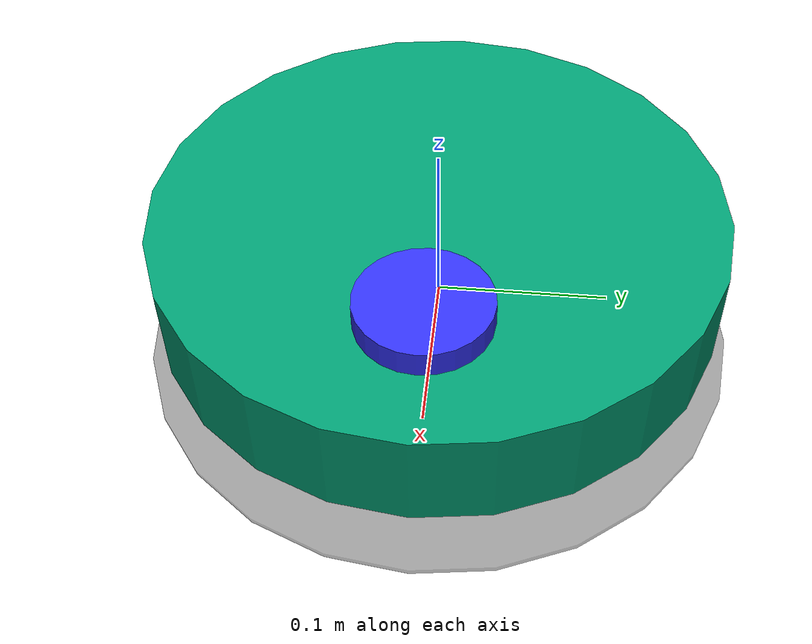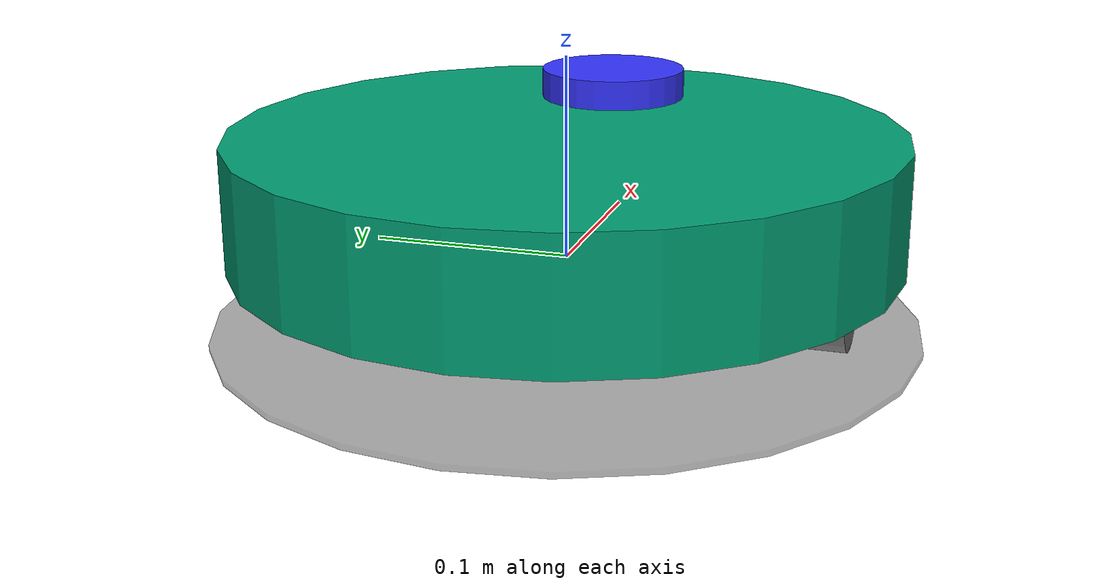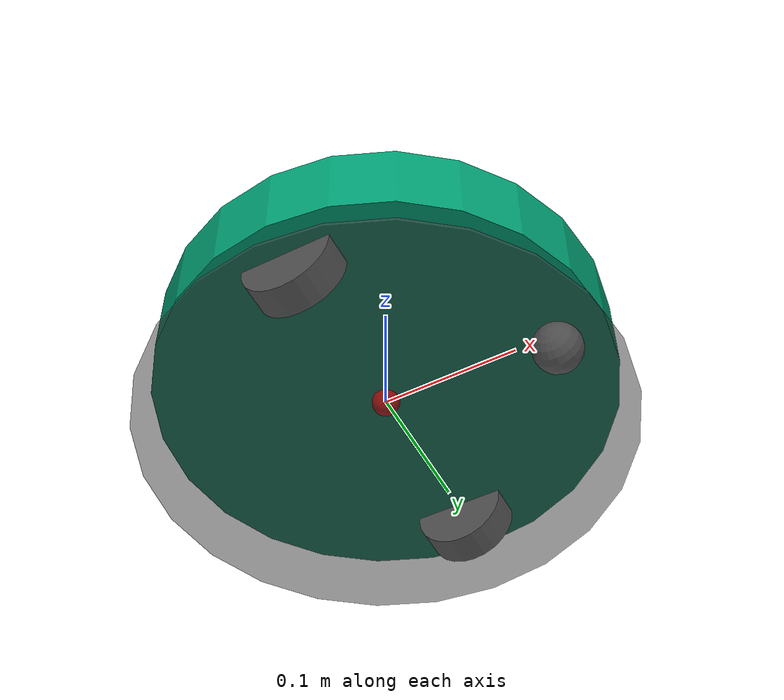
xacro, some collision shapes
<?xml version="1.0"?>
<robot xmlns:xacro="http://www.ros.org/wiki/xacro"  name="robot">

    <!-- See common Gazebo plugins in the world file -->

    <xacro:include filename="../../../description/common_properties.xacro" />

    <!-- =========== an equivalent of "robot_core.xacro" here: ============== -->

    <xacro:include filename="../../../description/inertial_macros.xacro" />

    <!-- wheel_separation - distance between left and right wheels, defined in ~/create_robot_ws/src/libcreate/src/types.cpp -->

    <xacro:include filename="create_base.urdf.xacro" />

    <xacro:create_base wheel_separation="0.258" base_diameter="0.3302" wheel_radius="0.033" wheel_width="0.024" mass_kg="3.5">
        <mesh filename="package://articubot_one/assets/meshes/create_1.dae" />
    </xacro:create_base>

    <xacro:property name="imu_offset_x" value="-0.04"/>
    <xacro:property name="imu_offset_z" value="0"/>
    <xacro:property name="imu_visual_size" value="0.01"/>
    <xacro:include filename="../../../description/imu.xacro" />

    <xacro:property name="laser_offset_x" value="0.085"/>
    <xacro:property name="laser_offset_z" value="0.033"/>

    <xacro:include filename="ros2_control.xacro" />

    <xacro:property name="open_circuit_voltage" value="14.0"/>
    <xacro:property name="battery_capacity" value="2.5"/>
    <xacro:include filename="../../../description/battery.xacro" />

    <xacro:include filename="create_sensors.urdf.xacro" />

</robot>

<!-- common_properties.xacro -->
<robot name="xacro_properties"
  xmlns:xacro="http://ros.org/wiki/xacro">

    <material name="white">
        <color rgba="1 1 1 1" />
    </material>

    <material name="black">
        <color rgba="0 0 0 1"/>
    </material>

    <material name="red">
        <color rgba="1 0 0 1"/>
    </material>

    <material name="green">
        <color rgba="0 1 0 1"/>
    </material>

    <material name="blue">
        <color rgba="0 0 1 1"/>
    </material>

    <material name="grey">
        <color rgba="0.5 0.5 0.5 1"/>
    </material>

    <material name="dark_grey">
        <color rgba="0.15 0.15 0.15 0.9"/>
    </material>

    <material name="shadow_grey">
        <color rgba="0.3 0.3 0.3 0.5"/>
    </material>

    <material name="sensor_blue">
        <color rgba="0.2 0.2 1 1"/>
    </material>

    <material name="sensor_lens_blue">
        <color rgba="0.26 0.34 0.55 1"/>
    </material>

    <material name="sensor_yellow">
        <color rgba="0.8 0.8 0.2 1"/>
    </material>

    <material name="body_color">
        <color rgba="0.6 0.5 0.2 0.85"/>
    </material>

    <material name="port_red">
        <color rgba="1 0.2 0.2 1"/>
    </material>

    <material name="starboard_green">
        <color rgba="0.2 1 0.2 1"/>
    </material>

    <xacro:arg name="sim_mode" default="false"/>

</robot>

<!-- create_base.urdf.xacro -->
<robot xmlns:xacro="http://ros.org/wiki/xacro">

  <xacro:macro name="create_wheel" params="prefix y_offset wheel_radius wheel_width">
    <link name="${prefix}_wheel_link">
      <visual>
        <origin xyz="0 0 0" rpy="0 ${pi/2} ${pi/2}"/>
        <geometry>
          <cylinder radius="${wheel_radius}" length="${wheel_width}"/>
        </geometry>
        <material name="grey"/>
      </visual>
      <collision>
        <origin xyz="0 0 0" rpy="0 ${pi/2} ${pi/2}"/>
        <geometry>
          <cylinder radius="${wheel_radius}" length="${wheel_width}"/>
        </geometry>
      </collision>
      <xacro:inertial_cylinder mass="0.01" length="${wheel_width}" radius="${wheel_radius}">
        <origin xyz="0 0 0" rpy="0 0 0"/>
      </xacro:inertial_cylinder>
    </link>

    <!-- joint name="${prefix}_wheel_joint" type="fixed" -->
    <joint name="wheel_${prefix}_joint" type="continuous">
      <origin xyz="0 ${y_offset} ${-wheel_radius}" rpy="0 0 0"/>
      <parent link="chassis_link"/>
      <child link="${prefix}_wheel_link"/>
      <axis xyz="0 1 0"/>
    </joint>

  </xacro:macro>

  <xacro:macro name="create_base"
               params="wheel_separation base_diameter wheel_radius wheel_width mass_kg *mesh">

    <!-- The coordinate frame called base_link is rigidly attached to the robot root body. -->
    <link name="base_link">
      <visual name="baselink_visual">
          <origin xyz="0 0 0"/>
          <geometry>
              <sphere radius="0.01"/>
          </geometry>
          <material name="red"/>
      </visual>
    </link>

    <!-- Define the center of the main robot chassis projected on the ground -->
    <link name="base_footprint">
      <visual name="footprint_visual">
          <origin xyz="0 0 0"/>
          <geometry>
              <cylinder radius="${base_diameter/2 + 0.01}" length="0.003"/>
          </geometry>
          <material name="shadow_grey"/>
      </visual>
    </link>

    <!-- The base footprint of the robot is located underneath the chassis -->
    <joint name="base_footprint_joint" type="fixed">
      <parent link="base_link"/>
      <child link="base_footprint" />
      <origin xyz="0 0 -${wheel_radius}" rpy="0 0 0"/>
    </joint>

    <joint name="chassis_joint" type="fixed">
      <parent link="base_link"/>
      <child link="chassis_link"/>
      <origin xyz="0 0 ${wheel_radius}"/>
    </joint>

    <!-- CHASSIS LINK -->
    <link name="chassis_link">

      <visual name="chassis_visual">
        <origin xyz=" 0 0 -0.015" rpy="0 0 0"/>
        <geometry>
          <xacro:insert_block name="mesh"/>
        </geometry>
      </visual>

      <collision>
        <origin xyz="0.0 0.0 0" rpy="0 0 0"/>
        <geometry>
          <cylinder length="0.0611632" radius="${base_diameter/2}"/>
        </geometry>
      </collision>
      <xacro:inertial_cylinder mass="${mass_kg}" length="0.0611632" radius="${base_diameter/2}">
        <!-- cheat: origin moved forward a bit, so that the center of mass is forward of the wheel axis -->
        <origin xyz="0.03 0 0" rpy="0 0 0"/>
      </xacro:inertial_cylinder>
    </link>

    <link name="wall_sensor_link">
    </link>

    <link name="left_cliff_sensor_link">
    </link>

    <link name="right_cliff_sensor_link">
    </link>

    <link name="leftfront_cliff_sensor_link">
    </link>

    <link name="rightfront_cliff_sensor_link">
    </link>

    <joint name="base_wall_sensor_joint" type="fixed">
      <origin xyz="0.09 -0.120 0.042" rpy="0 0 -1.0"/>
      <parent link="chassis_link"/>
      <child link="wall_sensor_link"/>
    </joint>
    <joint name="base_left_cliff_sensor_joint" type="fixed">
      <origin xyz="0.07 0.14 0.01" rpy="0 ${pi/2} 0"/>
      <parent link="chassis_link"/>
      <child link="left_cliff_sensor_link"/>
    </joint>
    <joint name="base_right_cliff_sensor_joint" type="fixed">
      <origin xyz="0.07 -0.14 0.01" rpy="0 ${pi/2} 0"/>
      <parent link="chassis_link"/>
      <child link="right_cliff_sensor_link"/>
    </joint>
    <joint name="base_leftfront_cliff_sensor_joint" type="fixed">
      <origin xyz="0.15 0.04 0.01" rpy="0 ${pi/2} 0"/>
      <parent link="chassis_link"/>
      <child link="leftfront_cliff_sensor_link"/>
    </joint>
    <joint name="base_rightfront_cliff_sensor_joint" type="fixed">
      <origin xyz="0.15 -0.04 0.01" rpy="0 ${pi/2} 0"/>
      <parent link="chassis_link"/>
      <child link="rightfront_cliff_sensor_link"/>
    </joint>

    <xacro:create_wheel prefix="left" y_offset="${wheel_separation / 2}" wheel_radius="${wheel_radius}" wheel_width="${wheel_width}"/>
    <xacro:create_wheel prefix="right" y_offset="${wheel_separation / -2}" wheel_radius="${wheel_radius}" wheel_width="${wheel_width}"/>

    <link name="front_castor_link">
      <visual>
        <origin xyz="0 0 0" rpy="0 ${pi/2} ${pi/2}"/>
        <geometry>
          <sphere radius="0.018"/>
        </geometry>
        <material name="grey"/>
      </visual>
      <collision>
        <origin xyz="0 0 0" rpy="0 ${pi/2} ${pi/2}"/>
        <geometry>
          <sphere radius="0.018"/>
        </geometry>
      </collision>
      <xacro:inertial_sphere mass="0.01" radius="0.018">
        <origin xyz="0 0 0" rpy="0 0 0"/>
      </xacro:inertial_sphere>
    </link>

    <!-- fixed because there's no transmission -->
    <joint name="front_castor_joint" type="fixed">
      <origin xyz="0.13 0 -0.048" rpy="0 0 0"/>
      <parent link="chassis_link"/>
      <child link="front_castor_link"/>
      <axis xyz="0 1 0"/>
    </joint>

  </xacro:macro>

</robot>

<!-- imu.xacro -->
<robot xmlns:xacro="http://www.ros.org/wiki/xacro" >

    <!-- *********************** IMU SETUP *********************************  -->
    <!-- Each sensor must be attached to a link.                              -->

    <!-- parameters: imu_offset_x
                     imu_offset_z
                     imu_visual_size -->

    <joint name="imu_joint" type="fixed">
        <parent link="chassis_link"/>
        <child link="imu_link"/>
        <!-- we want to place the IMU close to the center of mass, between the wheels -->
        <origin xyz="${imu_offset_x} 0 ${imu_offset_z}" rpy="0 0 0"/>
    </joint>

    <link name="imu_link">
        <visual>
            <geometry>
                <box size="${imu_visual_size} ${imu_visual_size} ${imu_visual_size}"/>
            </geometry>
            <material name="sensor_blue"/>
        </visual>
    </link>

    <!-- gz model -m dragger -s imu_link -->
    <gazebo reference="imu_link">
        <!-- IMU sensor, with "enable_orientation" publishes /imu/data, without - /imu/data_raw
             See https://github.com/CCNYRoboticsLab/imu_tools -->
        <sensor name="imu_link" type="imu">
        <pose>0 0 0 0 0 0</pose>
        <always_on>1</always_on>
        <topic>gz_imu/data</topic>
        <gz_frame_id>imu_link</gz_frame_id>
        <frame_id>imu_link</frame_id>
        <update_rate>250</update_rate>
            <imu>
                <orientation_reference_frame>
                  <localization>ENU</localization>
                </orientation_reference_frame>
                <enable_orientation>1</enable_orientation>
                <angular_velocity>
                    <x>
                        <noise type="gaussian">
                            <mean>0</mean>
                            <stddev>0.009</stddev>
                            <bias_mean>0.00075</bias_mean>
                            <bias_stddev>0.005</bias_stddev>
                            <dynamic_bias_stddev>0.00002</dynamic_bias_stddev>
                            <dynamic_bias_correlation_time>400.0</dynamic_bias_correlation_time>
                            <precision>0.00025</precision>
                        </noise>
                    </x>
                    <y>
                        <noise type="gaussian">
                            <mean>0</mean>
                            <stddev>0.009</stddev>
                            <bias_mean>0.00075</bias_mean>
                            <bias_stddev>0.005</bias_stddev>
                            <dynamic_bias_stddev>0.00002</dynamic_bias_stddev>
                            <dynamic_bias_correlation_time>400.0</dynamic_bias_correlation_time>
                            <precision>0.00025</precision>
                        </noise>
                    </y>
                    <z>
                        <noise type="gaussian">
                            <mean>0</mean>
                            <stddev>0.009</stddev>
                            <bias_mean>0.00075</bias_mean>
                            <bias_stddev>0.005</bias_stddev>
                            <dynamic_bias_stddev>0.00002</dynamic_bias_stddev>
                            <dynamic_bias_correlation_time>400.0</dynamic_bias_correlation_time>
                            <precision>0.00025</precision>
                        </noise>
                    </z>
                </angular_velocity>
                <linear_acceleration>
                    <x>
                        <noise type="gaussian">
                            <mean>0</mean>
                            <stddev>0.021</stddev>
                            <bias_mean>0.05</bias_mean>
                            <bias_stddev>0.0075</bias_stddev>
                            <dynamic_bias_stddev>0.000375</dynamic_bias_stddev>
                            <dynamic_bias_correlation_time>175.0</dynamic_bias_correlation_time>
                            <precision>0.005</precision>
                        </noise>
                    </x>
                    <y>
                        <noise type="gaussian">
                            <mean>0</mean>
                            <stddev>0.021</stddev>
                            <bias_mean>0.05</bias_mean>
                            <bias_stddev>0.0075</bias_stddev>
                            <dynamic_bias_stddev>0.000375</dynamic_bias_stddev>
                            <dynamic_bias_correlation_time>175.0</dynamic_bias_correlation_time>
                            <precision>0.005</precision>
                        </noise>
                    </y>
                    <z>
                        <noise type="gaussian">
                            <mean>0</mean>
                            <stddev>0.021</stddev>
                            <bias_mean>0.05</bias_mean>
                            <bias_stddev>0.0075</bias_stddev>
                            <dynamic_bias_stddev>0.000375</dynamic_bias_stddev>
                            <dynamic_bias_correlation_time>175.0</dynamic_bias_correlation_time>
                            <precision>0.005</precision>
                        </noise>
                    </z>
                </linear_acceleration>
            </imu>
        </sensor>

        <!-- Magnetometer sharing the IMU link, taking magnetic field from "gz::sim::systems::Magnetometer" Gazebo plugin -->
        <sensor name="magnetometer" type="magnetometer">
          <pose>0 0 0 0 0 0</pose>
          <always_on>1</always_on>
          <update_rate>100</update_rate>
          <visualize>true</visualize>
          <topic>gz_magnetometer/data</topic>
          <gz_frame_id>imu_link</gz_frame_id>
          <frame_id>imu_link</frame_id>
          <enable_metrics>true</enable_metrics>
          <magnetometer>
            <x>
              <noise type="gaussian">
                <mean>0.0</mean>
                <stddev>0.001</stddev>
              </noise>
            </x>
            <y>
              <noise type="gaussian">
                <mean>0.0</mean>
                <stddev>0.001</stddev>
              </noise>
            </y>
            <z>
              <noise type="gaussian">
                <mean>0.0</mean>
                <stddev>0.001</stddev>
              </noise>
            </z>
          </magnetometer>
        </sensor>
    </gazebo>

</robot>

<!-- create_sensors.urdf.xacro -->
<robot xmlns:xacro="http://ros.org/wiki/xacro">

    <joint name="laser_joint" type="fixed">
      <parent link="chassis_link"/>
      <child link="laser_frame"/>
      <origin xyz="${laser_offset_x} 0 ${laser_offset_z}" rpy="0 0 0"/>
    </joint>

    <link name="laser_frame">
      <visual>
        <geometry>
          <cylinder radius="0.0375" length="0.025"/>
        </geometry>
        <material name="sensor_blue"/>
      </visual>
      <visual>
        <origin xyz="0 0 -0.01"/>
        <geometry>
          <cylinder radius="0.01" length="0.02"/>
        </geometry>
        <material name="sensor_blue"/>
      </visual>
    </link>

    <!-- gz model -m turtle -s laser_frame -->
    <gazebo reference="laser_frame">
        <!-- name must be "laser_frame", specifically for lasers. Must reference an actual link in .xacro -->
        <sensor name='laser_frame' type='gpu_lidar'>
          <pose>0 0 0 0 0 0</pose>
          <always_on>1</always_on>
          <!-- 6 Hz for LD14 - see "frequency" in dual_ekf_navsat_parameters.yaml -->
          <update_rate>6</update_rate>
          <topic>gz_scan</topic>
          <gz_frame_id>laser_frame</gz_frame_id>
          <frame_id>laser_frame</frame_id>
          <ray>
            <scan>
              <horizontal>
                <samples>360</samples>
                <resolution>1</resolution>
                <min_angle>-${pi}</min_angle>
                <max_angle>${pi}</max_angle>
              </horizontal>
              <vertical>
                <samples>1</samples>
                <resolution>1</resolution>
                <min_angle>0.0</min_angle>
                <max_angle>0.0</max_angle>
              </vertical>
            </scan>
            <range>
              <min>0.3</min>
              <max>12.0</max>
              <resolution>0.01</resolution>
            </range>
            <noise>
              <type>gaussian</type>
              <mean>0</mean>
              <stddev>0.01</stddev>
            </noise>
          </ray>
          <visualize>true</visualize>
        </sensor>
    </gazebo>

</robot>
